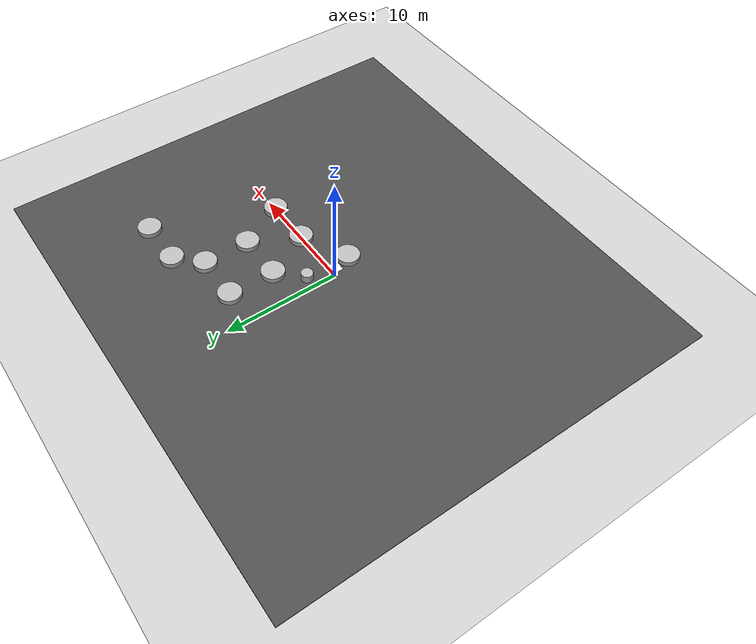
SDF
<sdf version="1.6">
 <world name="default">
  <model name="ground_plane">
   <static>1</static>
   <link name="link">
    <collision name="collision">
     <geometry><plane><normal>0 0 1</normal><size>100 100</size></plane></geometry>
     <surface><friction><ode><mu>100</mu><mu2>50</mu2></ode></friction></surface>
    </collision>
    <visual name="visual">
     <cast_shadows>0</cast_shadows>
     <geometry><plane><normal>0 0 1</normal><size>100 100</size></plane></geometry>
     <material>
      <script><uri>file://media/materials/scripts/gazebo.material</uri><name>Gazebo/Grey</name></script>
     </material>
    </visual>
   </link>
  </model>
  <physics name="default_physics" default="0" type="ode">
   <ode>
    <solver>
     <type>quick</type>
     <iters>10</iters>
     <sor>1.3</sor>
     <use_dynamic_moi_rescaling>0</use_dynamic_moi_rescaling>
    </solver>
    <constraints>
     <cfm>0</cfm>
     <erp>0.2</erp>
     <contact_max_correcting_vel>100</contact_max_correcting_vel>
     <contact_surface_layer>0.001</contact_surface_layer>
    </constraints>
   </ode>
   <max_step_size>0.004</max_step_size>
   <real_time_factor>1</real_time_factor>
   <real_time_update_rate>250</real_time_update_rate>
  </physics>
  <gravity>0 0 -9.8066</gravity>
  <magnetic_field>6e-06 2.3e-05 -4.2e-05</magnetic_field>
  <atmosphere type="adiabatic"/>
  <scene><ambient>0.4 0.4 0.4 1</ambient><background>0.7 0.7 0.7 1</background><shadows>1</shadows></scene>
  <spherical_coordinates>
   <surface_model>EARTH_WGS84</surface_model>
   <latitude_deg>0</latitude_deg>
   <longitude_deg>0</longitude_deg>
   <elevation>0</elevation>
   <heading_deg>0</heading_deg>
  </spherical_coordinates>
  <light name="user_directional_light_0" type="directional">
   <pose>0.540288 -0.667921 1 0 -0 0</pose>
   <diffuse>0.5 0.5 0.5 1</diffuse>
   <specular>0.1 0.1 0.1 1</specular>
   <direction>0.1 0.1 -0.9</direction>
   <attenuation>
    <range>20</range>
    <constant>0.5</constant>
    <linear>0.01</linear>
    <quadratic>0.001</quadratic>
   </attenuation>
  </light>
  <model name="asphalt_plane">
   <static>1</static>
   <link name="link">
    <collision name="collision"><geometry><box><size>42.7782 38.364 0.1</size></box></geometry></collision>
    <visual name="visual">
     <cast_shadows>0</cast_shadows>
     <geometry><box><size>42.7782 38.364 0.1</size></box></geometry>
     <material>
      <script>
       <uri>model://asphalt_plane/materials/scripts</uri>
       <uri>model://asphalt_plane/materials/textures</uri>
       <name>vrc/asphalt</name>
      </script>
     </material>
    </visual>
   </link>
   <pose>0.497562 -0.550879 0 0 -0 0</pose>
  </model>
  <model name="cylinder1">
   <pose>3 8 0 0 0 0</pose>
   <link name="link">
    <collision name="collision">
     <geometry><cylinder><radius>1.0</radius><length>1.0</length></cylinder></geometry>
    </collision>
    <visual name="visual">
     <geometry><cylinder><radius>1.0</radius><length>1.0</length></cylinder></geometry>
     <material><script>Gazebo/WoodPallet</script></material>
    </visual>
   </link>
  </model>
  <model name="cylinder2">
   <pose>7 8 0 0 0 0</pose>
   <link name="link">
    <collision name="collision">
     <geometry><cylinder><radius>1.0</radius><length>1.0</length></cylinder></geometry>
    </collision>
    <visual name="visual">
     <geometry><cylinder><radius>1.0</radius><length>1.0</length></cylinder></geometry>
     <material><script>Gazebo/WoodPallet</script></material>
    </visual>
   </link>
  </model>
  <model name="cylinder3">
   <pose>3 4 0 0 0 0</pose>
   <link name="link">
    <collision name="collision">
     <geometry><cylinder><radius>1.0</radius><length>1.0</length></cylinder></geometry>
    </collision>
    <visual name="visual">
     <geometry><cylinder><radius>1.0</radius><length>1.0</length></cylinder></geometry>
     <material><script>Gazebo/WoodPallet</script></material>
    </visual>
   </link>
  </model>
  <model name="cylinder4">
   <pose>7 4 0 0 0 0</pose>
   <link name="link">
    <collision name="collision">
     <geometry><cylinder><radius>1.0</radius><length>1.0</length></cylinder></geometry>
    </collision>
    <visual name="visual">
     <geometry><cylinder><radius>1.0</radius><length>1.0</length></cylinder></geometry>
     <material><script>Gazebo/WoodPallet</script></material>
    </visual>
   </link>
  </model>
  <model name="cylinder6">
   <pose>9 10 0 0 0 0</pose>
   <link name="link">
    <collision name="collision">
     <geometry><cylinder><radius>1.0</radius><length>1.0</length></cylinder></geometry>
    </collision>
    <visual name="visual">
     <geometry><cylinder><radius>1.0</radius><length>1.0</length></cylinder></geometry>
     <material><script>Gazebo/WoodPallet</script></material>
    </visual>
   </link>
  </model>
  <model name="cylinder8">
   <pose>13 10 0 0 0 0</pose>
   <link name="link">
    <collision name="collision">
     <geometry><cylinder><radius>1.0</radius><length>1.0</length></cylinder></geometry>
    </collision>
    <visual name="visual">
     <geometry><cylinder><radius>1.0</radius><length>1.0</length></cylinder></geometry>
     <material><script>Gazebo/WoodPallet</script></material>
    </visual>
   </link>
  </model>
  <model name="cylinder9">
   <pose>5 0 0 0 0 0</pose>
   <link name="link">
    <collision name="collision">
     <geometry><cylinder><radius>1.0</radius><length>1.0</length></cylinder></geometry>
    </collision>
    <visual name="visual">
     <geometry><cylinder><radius>1.0</radius><length>1.0</length></cylinder></geometry>
     <material><script>Gazebo/WoodPallet</script></material>
    </visual>
   </link>
  </model>
  <model name="cylinder10">
   <pose>1 -2 0 0 0 0</pose>
   <link name="link">
    <collision name="collision">
     <geometry><cylinder><radius>1.0</radius><length>1.0</length></cylinder></geometry>
    </collision>
    <visual name="visual">
     <geometry><cylinder><radius>1.0</radius><length>1.0</length></cylinder></geometry>
     <material><script>Gazebo/WoodPallet</script></material>
    </visual>
   </link>
  </model>
  <model name="cylinder11">
   <pose>9 0 0 0 0 0</pose>
   <link name="link">
    <collision name="collision">
     <geometry><cylinder><radius>1.0</radius><length>1.0</length></cylinder></geometry>
    </collision>
    <visual name="visual">
     <geometry><cylinder><radius>1.0</radius><length>1.0</length></cylinder></geometry>
     <material><script>Gazebo/WoodPallet</script></material>
    </visual>
   </link>
  </model>
  <model name="cylinder12">
   <pose>1 2 0 0 0 0</pose>
   <link name="link">
    <collision name="collision">
     <geometry><cylinder><radius>0.5</radius><length>1.5</length></cylinder></geometry>
    </collision>
    <visual name="visual">
     <geometry><cylinder><radius>0.5</radius><length>1.5</length></cylinder></geometry>
     <material><script>Gazebo/WoodPallet</script></material>
    </visual>
   </link>
  </model>
  <model name="aruco_visual_marker_0">
   <pose>0 0 1 0 -0 0</pose>
   <link name="marker">
    <pose>0 0 0 0 -0 3.14</pose>
    <visual name="visual">
     <geometry><box><size>1 1 1e-05</size></box></geometry>
     <material>
      <script>
       <uri>model://fractal_marker/materials/scripts</uri>
       <uri>model://fractal_marker/materials/textures</uri>
       <name>ArucoVisualMarker0</name>
      </script>
      <ambient>1 1 1 1</ambient>
      <diffuse>1 1 1 1</diffuse>
      <specular>0 0 0 1</specular>
      <emissive>1 1 1 0</emissive>
      <shader type="vertex"><normal_map>__default__</normal_map></shader>
     </material>
    </visual>
    <collision name="collision"><geometry><box><size>1 1 1e-05</size></box></geometry></collision>
   </link>
   <static>1</static>
  </model>
  <light name="user_directional_light_1" type="directional">
   <pose>18.7483 28.6467 1 0 -0 0</pose>
   <diffuse>0.5 0.5 0.5 1</diffuse>
   <specular>0.1 0.1 0.1 1</specular>
   <direction>0.1 0.1 -0.9</direction>
   <attenuation>
    <range>20</range>
    <constant>0.5</constant>
    <linear>0.01</linear>
    <quadratic>0.001</quadratic>
   </attenuation>
  </light>
 </world>
</sdf>
